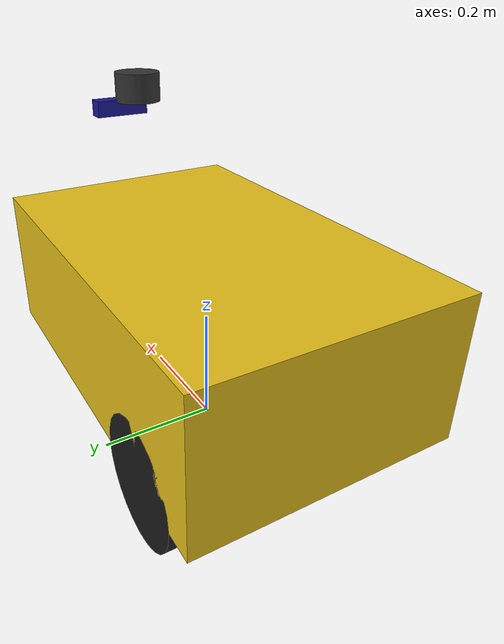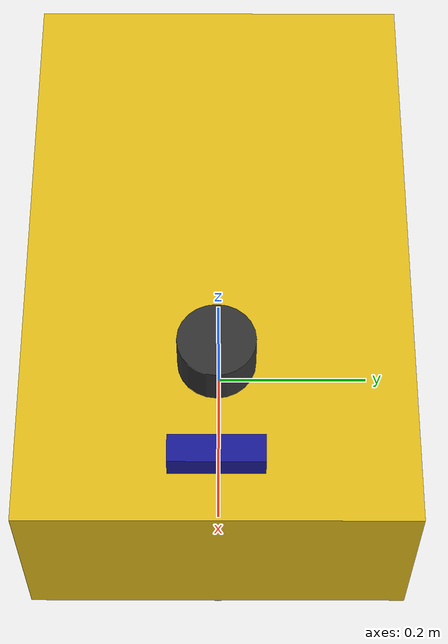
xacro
<?xml version="1.0"?>
<robot name="robot" xmlns:xacro="http://www.ros.org/wiki/xacro">

  <xacro:property name="base_len"   value="0.70"/>
  <xacro:property name="base_wid"   value="0.45"/>
  <xacro:property name="base_hgt"   value="0.25"/>
  <xacro:property name="base_mass"  value="20.0"/>

  <xacro:property name="wheel_radius" value="0.10"/>
  <xacro:property name="wheel_width"  value="0.05"/>
  <xacro:property name="wheel_mass"   value="1.5"/>
  <xacro:property name="wheel_sep"    value="0.40"/>
  <xacro:property name="wheel_xoff"   value="-0.20"/>
  <xacro:property name="wheel_zoff"   value="0.0"/>

  <xacro:property name="caster_radius" value="0.05"/>
  <xacro:property name="caster_xoff"   value="0.28"/>

  <xacro:property name="lidar_xoff" value="0.25"/>
  <xacro:property name="lidar_zoff" value="0.20"/>

  <xacro:property name="cam_xoff" value="0.34"/>
  <xacro:property name="cam_zoff" value="0.15"/>

  <xacro:property name="PI" value="3.14159265359"/>

  <xacro:macro name="box_inertia" params="m x y z">
    <inertial>
      <mass value="${m}"/>
      <inertia ixx="${m*(y*y+z*z)/12.0}" ixy="0.0" ixz="0.0"
               iyy="${m*(x*x+z*z)/12.0}" iyz="0.0"
               izz="${m*(x*x+y*y)/12.0}"/>
    </inertial>
  </xacro:macro>

  <xacro:macro name="cyl_inertia" params="m r h">
    <inertial>
      <mass value="${m}"/>
      <inertia ixx="${m*(3*r*r+h*h)/12.0}" ixy="0.0" ixz="0.0"
               iyy="${m*(3*r*r+h*h)/12.0}" iyz="0.0"
               izz="${m*r*r/2.0}"/>
    </inertial>
  </xacro:macro>

  <xacro:macro name="sphere_inertia" params="m r">
    <inertial>
      <mass value="${m}"/>
      <inertia ixx="${2.0*m*r*r/5.0}" ixy="0.0" ixz="0.0"
               iyy="${2.0*m*r*r/5.0}" iyz="0.0"
               izz="${2.0*m*r*r/5.0}"/>
    </inertial>
  </xacro:macro>

  <!-- base_footprint is the ground-projected root for the odom->base chain. -->
  <link name="base_footprint"/>

  <link name="base_link">
    <visual>
      <origin xyz="0 0 0" rpy="0 0 0"/>
      <geometry><box size="${base_len} ${base_wid} ${base_hgt}"/></geometry>
      <material name="robot_yellow"><color rgba="0.9 0.75 0.1 1.0"/></material>
    </visual>
    <collision>
      <origin xyz="0 0 0" rpy="0 0 0"/>
      <geometry><box size="${base_len} ${base_wid} ${base_hgt}"/></geometry>
    </collision>
    <xacro:box_inertia m="${base_mass}" x="${base_len}" y="${base_wid}" z="${base_hgt}"/>
  </link>

  <joint name="base_footprint_joint" type="fixed">
    <parent link="base_footprint"/>
    <child link="base_link"/>
    <origin xyz="0 0 ${wheel_radius + base_hgt/2.0}" rpy="0 0 0"/>
  </joint>

  <xacro:macro name="wheel" params="prefix yreflect">
    <link name="${prefix}_wheel">
      <visual>
        <origin xyz="0 0 0" rpy="${PI/2.0} 0 0"/>
        <geometry><cylinder radius="${wheel_radius}" length="${wheel_width}"/></geometry>
        <material name="wheel_black"><color rgba="0.1 0.1 0.1 1.0"/></material>
      </visual>
      <collision>
        <origin xyz="0 0 0" rpy="${PI/2.0} 0 0"/>
        <geometry><cylinder radius="${wheel_radius}" length="${wheel_width}"/></geometry>
      </collision>
      <xacro:cyl_inertia m="${wheel_mass}" r="${wheel_radius}" h="${wheel_width}"/>
    </link>

    <joint name="${prefix}_wheel_joint" type="continuous">
      <parent link="base_link"/>
      <child link="${prefix}_wheel"/>
      <origin xyz="${wheel_xoff} ${yreflect*wheel_sep/2.0} ${-base_hgt/2.0 + wheel_zoff}"
              rpy="0 0 0"/>
      <axis xyz="0 1 0"/>
    </joint>
  </xacro:macro>

  <xacro:wheel prefix="left"  yreflect="1"/>
  <xacro:wheel prefix="right" yreflect="-1"/>

  <link name="caster_wheel">
    <visual>
      <geometry><sphere radius="${caster_radius}"/></geometry>
      <material name="wheel_black"><color rgba="0.1 0.1 0.1 1.0"/></material>
    </visual>
    <collision>
      <geometry><sphere radius="${caster_radius}"/></geometry>
    </collision>
    <xacro:sphere_inertia m="0.5" r="${caster_radius}"/>
  </link>

  <joint name="caster_joint" type="fixed">
    <parent link="base_link"/>
    <child link="caster_wheel"/>
    <origin xyz="${caster_xoff} 0 ${-base_hgt/2.0 - (wheel_radius - caster_radius)}"
            rpy="0 0 0"/>
  </joint>

  <link name="lidar_link">
    <visual>
      <geometry><cylinder radius="0.04" length="0.05"/></geometry>
      <material name="lidar_grey"><color rgba="0.2 0.2 0.2 1.0"/></material>
    </visual>
    <collision>
      <geometry><cylinder radius="0.04" length="0.05"/></geometry>
    </collision>
    <xacro:cyl_inertia m="0.2" r="0.04" h="0.05"/>
  </link>

  <joint name="lidar_joint" type="fixed">
    <parent link="base_link"/>
    <child link="lidar_link"/>
    <origin xyz="${lidar_xoff} 0 ${base_hgt/2.0 + lidar_zoff}" rpy="0 0 0"/>
  </joint>

  <link name="camera_link">
    <visual>
      <geometry><box size="0.03 0.10 0.03"/></geometry>
      <material name="cam_blue"><color rgba="0.1 0.1 0.6 1.0"/></material>
    </visual>
    <collision>
      <geometry><box size="0.03 0.10 0.03"/></geometry>
    </collision>
    <xacro:box_inertia m="0.1" x="0.03" y="0.10" z="0.03"/>
  </link>

  <joint name="camera_joint" type="fixed">
    <parent link="base_link"/>
    <child link="camera_link"/>
    <origin xyz="${cam_xoff} 0 ${base_hgt/2.0 + cam_zoff}" rpy="0 0 0"/>
  </joint>

  <!-- REP-103 camera optical frame (z forward, x right, y down). -->
  <link name="camera_optical_link"/>
  <joint name="camera_optical_joint" type="fixed">
    <parent link="camera_link"/>
    <child link="camera_optical_link"/>
    <origin xyz="0 0 0" rpy="${-PI/2.0} 0 ${-PI/2.0}"/>
  </joint>

  <xacro:include filename="$(find vlm_description)/urdf/robot.gazebo.xacro"/>

</robot>
